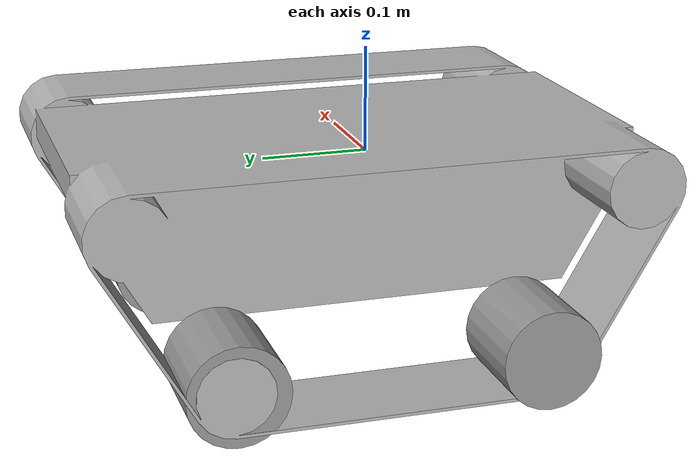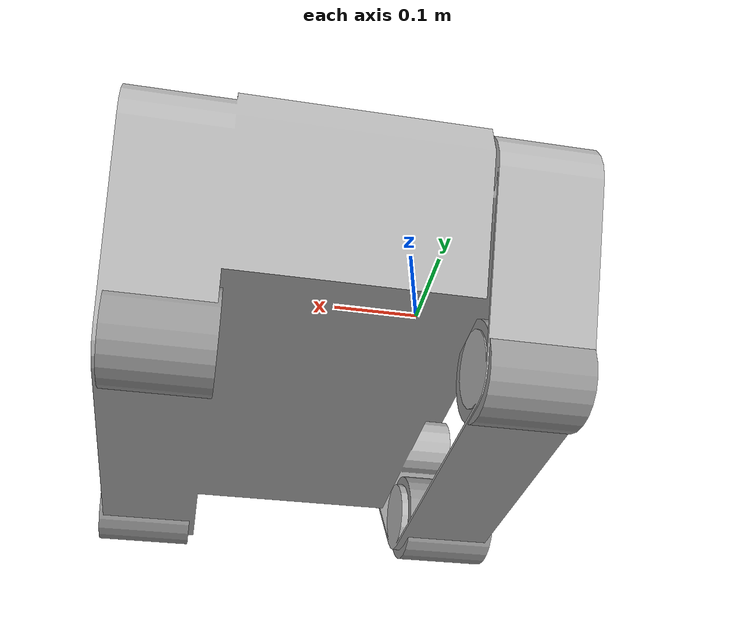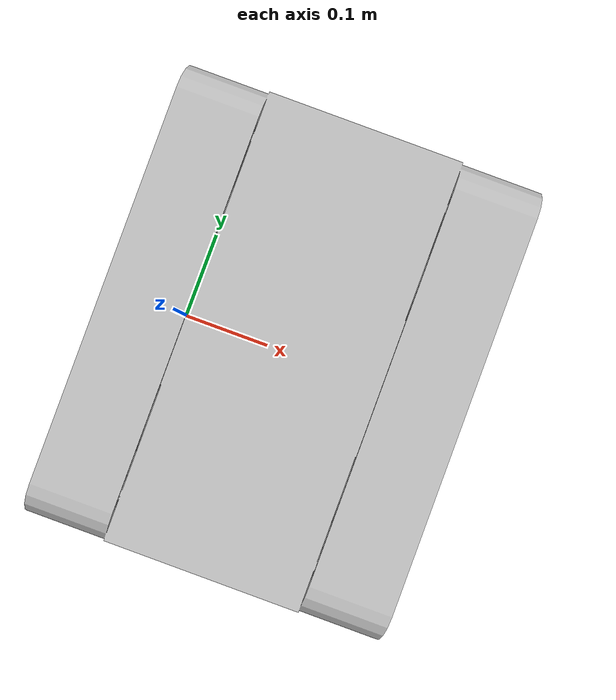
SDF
<?xml version='1.0'?>
<sdf version='1.6'>
  <model name='capra6'>
    <link name='base_link'>
      <pose frame=''>0 0 0 0 -0 0</pose>
      <inertial>
        <pose frame=''>0.12065 0 -0.079421 0 -0 0</pose>
        <mass>23.124</mass>
        <inertia>
          <ixx>0.660306</ixx>
          <ixy>-1.78746e-18</ixy>
          <ixz>0</ixz>
          <iyy>0.303669</iyy>
          <iyz>8.59691e-17</iyz>
          <izz>0.815602</izz>
        </inertia>
      </inertial>
      <self_collide>0</self_collide>
      <kinematic>0</kinematic>
      <velocity_decay/>
      <sensor name='sensor' type='ray'>
        <visualize>1</visualize>
        <update_rate>30</update_rate>
        <ray>
          <scan>
            <horizontal>
              <samples>540</samples>
              <resolution>1</resolution>
              <min_angle>-2.3562</min_angle>
              <max_angle>2.3562</max_angle>
            </horizontal>
            <vertical>
              <samples>1</samples>
              <min_angle>0</min_angle>
              <max_angle>0</max_angle>
            </vertical>
          </scan>
          <range>
            <min>0.2</min>
            <max>4</max>
            <resolution>0.1</resolution>
          </range>
          <noise>
            <type>gaussian</type>
            <mean>0</mean>
            <stddev>0.01</stddev>
          </noise>
        </ray>
        <plugin name='laser' filename='libgazebo_ros_laser.so'>
          <topicName>/scan</topicName>
          <frameName>laser</frameName>
          <robotNamespace>/</robotNamespace>
        </plugin>
        <always_on>1</always_on>
        <update_rate>5</update_rate>
        <visualize>1</visualize>
        <pose frame=''>0.1 0.25 0.05 0 -0 1.5708</pose>
      </sensor>
      <visual name='base_link_visual'>
        <pose frame=''>0 0 0 1.5708 -0 0</pose>
        <geometry>
          <mesh>
            <scale>1 1 1</scale>
            <uri>model://robotcapra/meshes/robotcapra.stl</uri>
          </mesh>
        </geometry>
        <material>
          <script>
            <uri>__default__</uri>
            <name>__default__</name>
          </script>
          <shader type='pixel'/>
          <emissive>0 0 0 1</emissive>
        </material>
        <cast_shadows>1</cast_shadows>
        <transparency>0</transparency>
      </visual>
      <collision name='base_link_collision'>
        <laser_retro>0</laser_retro>
        <max_contacts>10</max_contacts>
        <pose frame=''>0 0 0 1.5708 -0 0</pose>
        <geometry>
          <mesh>
            <uri>model://robotcapra/meshes/robotcapra.stl</uri>
            <scale>1 1 1</scale>
          </mesh>
        </geometry>
        <surface>
          <friction>
            <ode>
              <mu>1</mu>
              <mu2>1</mu2>
              <fdir1>0 0 0</fdir1>
              <slip1>0</slip1>
              <slip2>0</slip2>
            </ode>
            <torsional>
              <coefficient>1</coefficient>
              <patch_radius>0</patch_radius>
              <surface_radius>0</surface_radius>
              <use_patch_radius>1</use_patch_radius>
              <ode>
                <slip>0</slip>
              </ode>
            </torsional>
          </friction>
          <bounce>
            <restitution_coefficient>0</restitution_coefficient>
            <threshold>1e+06</threshold>
          </bounce>
          <contact>
            <collide_without_contact>0</collide_without_contact>
            <collide_without_contact_bitmask>1</collide_without_contact_bitmask>
            <collide_bitmask>1</collide_bitmask>
            <ode>
              <soft_cfm>0</soft_cfm>
              <soft_erp>0.2</soft_erp>
              <kp>1e+13</kp>
              <kd>1</kd>
              <max_vel>0.01</max_vel>
              <min_depth>0</min_depth>
            </ode>
            <bullet>
              <split_impulse>1</split_impulse>
              <split_impulse_penetration_threshold>-0.01</split_impulse_penetration_threshold>
              <soft_cfm>0</soft_cfm>
              <soft_erp>0.2</soft_erp>
              <kp>1e+13</kp>
              <kd>1</kd>
            </bullet>
          </contact>
        </surface>
      </collision>
      <collision name='base_link_fixed_joint_lump__laser_collision_1'>
        <laser_retro>0</laser_retro>
        <max_contacts>10</max_contacts>
        <pose frame=''>0.1 0.25 0.05 0 -0 1.5708</pose>
        <geometry>
          <sphere>
            <radius>0.1</radius>
          </sphere>
        </geometry>
        <surface>
          <friction>
            <ode>
              <mu>1</mu>
              <mu2>1</mu2>
              <fdir1>0 0 0</fdir1>
              <slip1>0</slip1>
              <slip2>0</slip2>
            </ode>
            <torsional>
              <coefficient>1</coefficient>
              <patch_radius>0</patch_radius>
              <surface_radius>0</surface_radius>
              <use_patch_radius>1</use_patch_radius>
              <ode>
                <slip>0</slip>
              </ode>
            </torsional>
          </friction>
          <bounce>
            <restitution_coefficient>0</restitution_coefficient>
            <threshold>1e+06</threshold>
          </bounce>
          <contact>
            <collide_without_contact>0</collide_without_contact>
            <collide_without_contact_bitmask>1</collide_without_contact_bitmask>
            <collide_bitmask>1</collide_bitmask>
            <ode>
              <soft_cfm>0</soft_cfm>
              <soft_erp>0.2</soft_erp>
              <kp>1e+13</kp>
              <kd>1</kd>
              <max_vel>0.01</max_vel>
              <min_depth>0</min_depth>
            </ode>
            <bullet>
              <split_impulse>1</split_impulse>
              <split_impulse_penetration_threshold>-0.01</split_impulse_penetration_threshold>
              <soft_cfm>0</soft_cfm>
              <soft_erp>0.2</soft_erp>
              <kp>1e+13</kp>
              <kd>1</kd>
            </bullet>
          </contact>
        </surface>
      </collision>
    </link>
    <link name='link_0'>
      <pose frame=''>0.288168 0.153769 -0.191776 0 -0 0</pose>
      <inertial>
        <mass>1</mass>
        <inertia>
          <ixx>0.145833</ixx>
          <ixy>0</ixy>
          <ixz>0</ixz>
          <iyy>0.145833</iyy>
          <iyz>0</iyz>
          <izz>0.125</izz>
        </inertia>
        <pose frame=''>0 0 0 0 -0 0</pose>
      </inertial>
      <gravity>1</gravity>
      <self_collide>0</self_collide>
      <kinematic>0</kinematic>
      <visual name='visual'>
        <pose frame=''>0 0 0 3.14159 1.57079 3.14159</pose>
        <geometry>
          <cylinder>
            <radius>0.05</radius>
            <length>0.1</length>
          </cylinder>
        </geometry>
        <material>
          <lighting>1</lighting>
          <script>
            <uri>file://media/materials/scripts/gazebo.material</uri>
            <name>Gazebo/Grey</name>
          </script>
          <shader type='pixel'>
            <normal_map>__default__</normal_map>
          </shader>
          <ambient>0.3 0.3 0.3 1</ambient>
          <diffuse>0.7 0.7 0.7 1</diffuse>
          <specular>0.01 0.01 0.01 1</specular>
          <emissive>0 0 0 1</emissive>
        </material>
        <transparency>0</transparency>
        <cast_shadows>1</cast_shadows>
      </visual>
      <collision name='collision'>
        <laser_retro>0</laser_retro>
        <max_contacts>10</max_contacts>
        <pose frame=''>0 0 0 3.14159 1.57079 3.14159</pose>
        <geometry>
          <cylinder>
            <radius>0.05</radius>
            <length>0.1</length>
          </cylinder>
        </geometry>
        <surface>
          <friction>
            <ode>
              <mu>1</mu>
              <mu2>1</mu2>
              <fdir1>0 0 0</fdir1>
              <slip1>0</slip1>
              <slip2>0</slip2>
            </ode>
            <torsional>
              <coefficient>1</coefficient>
              <patch_radius>0</patch_radius>
              <surface_radius>0</surface_radius>
              <use_patch_radius>1</use_patch_radius>
              <ode>
                <slip>0</slip>
              </ode>
            </torsional>
          </friction>
          <bounce>
            <restitution_coefficient>0</restitution_coefficient>
            <threshold>1e+06</threshold>
          </bounce>
          <contact>
            <collide_without_contact>0</collide_without_contact>
            <collide_without_contact_bitmask>1</collide_without_contact_bitmask>
            <collide_bitmask>1</collide_bitmask>
            <ode>
              <soft_cfm>0</soft_cfm>
              <soft_erp>0.2</soft_erp>
              <kp>1e+13</kp>
              <kd>1</kd>
              <max_vel>0.01</max_vel>
              <min_depth>0</min_depth>
            </ode>
            <bullet>
              <split_impulse>1</split_impulse>
              <split_impulse_penetration_threshold>-0.01</split_impulse_penetration_threshold>
              <soft_cfm>0</soft_cfm>
              <soft_erp>0.2</soft_erp>
              <kp>1e+13</kp>
              <kd>1</kd>
            </bullet>
          </contact>
        </surface>
      </collision>
    </link>
    <link name='link_0_clone'>
      <pose frame=''>-0.051275 0.15058 -0.191776 0 -0 0</pose>
      <inertial>
        <mass>1</mass>
        <inertia>
          <ixx>0.145833</ixx>
          <ixy>0</ixy>
          <ixz>0</ixz>
          <iyy>0.145833</iyy>
          <iyz>0</iyz>
          <izz>0.125</izz>
        </inertia>
        <pose frame=''>0 0 0 0 -0 0</pose>
      </inertial>
      <self_collide>0</self_collide>
      <kinematic>0</kinematic>
      <visual name='visual'>
        <pose frame=''>0 0 0 3.14159 1.57079 3.14159</pose>
        <geometry>
          <cylinder>
            <radius>0.05</radius>
            <length>0.1</length>
          </cylinder>
        </geometry>
        <material>
          <lighting>1</lighting>
          <script>
            <uri>file://media/materials/scripts/gazebo.material</uri>
            <name>Gazebo/Grey</name>
          </script>
          <shader type='pixel'>
            <normal_map>__default__</normal_map>
          </shader>
          <ambient>0.3 0.3 0.3 1</ambient>
          <diffuse>0.7 0.7 0.7 1</diffuse>
          <specular>0.01 0.01 0.01 1</specular>
          <emissive>0 0 0 1</emissive>
        </material>
        <transparency>0</transparency>
        <cast_shadows>1</cast_shadows>
      </visual>
      <collision name='collision'>
        <laser_retro>0</laser_retro>
        <max_contacts>10</max_contacts>
        <pose frame=''>0 0 0 3.14159 1.57079 3.14159</pose>
        <geometry>
          <cylinder>
            <radius>0.05</radius>
            <length>0.1</length>
          </cylinder>
        </geometry>
        <surface>
          <friction>
            <ode>
              <mu>1</mu>
              <mu2>1</mu2>
              <fdir1>0 0 0</fdir1>
              <slip1>0</slip1>
              <slip2>0</slip2>
            </ode>
            <torsional>
              <coefficient>1</coefficient>
              <patch_radius>0</patch_radius>
              <surface_radius>0</surface_radius>
              <use_patch_radius>1</use_patch_radius>
              <ode>
                <slip>0</slip>
              </ode>
            </torsional>
          </friction>
          <bounce>
            <restitution_coefficient>0</restitution_coefficient>
            <threshold>1e+06</threshold>
          </bounce>
          <contact>
            <collide_without_contact>0</collide_without_contact>
            <collide_without_contact_bitmask>1</collide_without_contact_bitmask>
            <collide_bitmask>1</collide_bitmask>
            <ode>
              <soft_cfm>0</soft_cfm>
              <soft_erp>0.2</soft_erp>
              <kp>1e+13</kp>
              <kd>1</kd>
              <max_vel>0.01</max_vel>
              <min_depth>0</min_depth>
            </ode>
            <bullet>
              <split_impulse>1</split_impulse>
              <split_impulse_penetration_threshold>-0.01</split_impulse_penetration_threshold>
              <soft_cfm>0</soft_cfm>
              <soft_erp>0.2</soft_erp>
              <kp>1e+13</kp>
              <kd>1</kd>
            </bullet>
          </contact>
        </surface>
      </collision>
    </link>
    <link name='link_0_clone_0'>
      <pose frame=''>0.297196 -0.155354 -0.191777 0 -0 0</pose>
      <inertial>
        <mass>1</mass>
        <inertia>
          <ixx>0.145833</ixx>
          <ixy>0</ixy>
          <ixz>0</ixz>
          <iyy>0.145833</iyy>
          <iyz>0</iyz>
          <izz>0.125</izz>
        </inertia>
        <pose frame=''>0 0 0 0 -0 0</pose>
      </inertial>
      <self_collide>0</self_collide>
      <kinematic>0</kinematic>
      <visual name='visual'>
        <pose frame=''>0 0 0 3.14159 1.57079 3.14159</pose>
        <geometry>
          <cylinder>
            <radius>0.05</radius>
            <length>0.1</length>
          </cylinder>
        </geometry>
        <material>
          <lighting>1</lighting>
          <script>
            <uri>file://media/materials/scripts/gazebo.material</uri>
            <name>Gazebo/Grey</name>
          </script>
          <shader type='pixel'>
            <normal_map>__default__</normal_map>
          </shader>
          <ambient>0.3 0.3 0.3 1</ambient>
          <diffuse>0.7 0.7 0.7 1</diffuse>
          <specular>0.01 0.01 0.01 1</specular>
          <emissive>0 0 0 1</emissive>
        </material>
        <transparency>0</transparency>
        <cast_shadows>1</cast_shadows>
      </visual>
      <collision name='collision'>
        <laser_retro>0</laser_retro>
        <max_contacts>10</max_contacts>
        <pose frame=''>0 0 0 3.14159 1.57079 3.14159</pose>
        <geometry>
          <cylinder>
            <radius>0.05</radius>
            <length>0.1</length>
          </cylinder>
        </geometry>
        <surface>
          <friction>
            <ode>
              <mu>1</mu>
              <mu2>1</mu2>
              <fdir1>0 0 0</fdir1>
              <slip1>0</slip1>
              <slip2>0</slip2>
            </ode>
            <torsional>
              <coefficient>1</coefficient>
              <patch_radius>0</patch_radius>
              <surface_radius>0</surface_radius>
              <use_patch_radius>1</use_patch_radius>
              <ode>
                <slip>0</slip>
              </ode>
            </torsional>
          </friction>
          <bounce>
            <restitution_coefficient>0</restitution_coefficient>
            <threshold>1e+06</threshold>
          </bounce>
          <contact>
            <collide_without_contact>0</collide_without_contact>
            <collide_without_contact_bitmask>1</collide_without_contact_bitmask>
            <collide_bitmask>1</collide_bitmask>
            <ode>
              <soft_cfm>0</soft_cfm>
              <soft_erp>0.2</soft_erp>
              <kp>1e+13</kp>
              <kd>1</kd>
              <max_vel>0.01</max_vel>
              <min_depth>0</min_depth>
            </ode>
            <bullet>
              <split_impulse>1</split_impulse>
              <split_impulse_penetration_threshold>-0.01</split_impulse_penetration_threshold>
              <soft_cfm>0</soft_cfm>
              <soft_erp>0.2</soft_erp>
              <kp>1e+13</kp>
              <kd>1</kd>
            </bullet>
          </contact>
        </surface>
      </collision>
    </link>
    <link name='link_0_clone_1'>
      <pose frame=''>-0.058032 -0.154622 -0.191778 0 -0 0</pose>
      <inertial>
        <mass>1</mass>
        <inertia>
          <ixx>0.145833</ixx>
          <ixy>0</ixy>
          <ixz>0</ixz>
          <iyy>0.145833</iyy>
          <iyz>0</iyz>
          <izz>0.125</izz>
        </inertia>
        <pose frame=''>0 0 0 0 -0 0</pose>
      </inertial>
      <self_collide>0</self_collide>
      <kinematic>0</kinematic>
      <visual name='visual'>
        <pose frame=''>0 0 0 3.14159 1.57079 3.14159</pose>
        <geometry>
          <cylinder>
            <radius>0.05</radius>
            <length>0.1</length>
          </cylinder>
        </geometry>
        <material>
          <lighting>1</lighting>
          <script>
            <uri>file://media/materials/scripts/gazebo.material</uri>
            <name>Gazebo/Grey</name>
          </script>
          <shader type='pixel'>
            <normal_map>__default__</normal_map>
          </shader>
          <ambient>0.3 0.3 0.3 1</ambient>
          <diffuse>0.7 0.7 0.7 1</diffuse>
          <specular>0.01 0.01 0.01 1</specular>
          <emissive>0 0 0 1</emissive>
        </material>
        <transparency>0</transparency>
        <cast_shadows>1</cast_shadows>
      </visual>
      <collision name='collision'>
        <laser_retro>0</laser_retro>
        <max_contacts>10</max_contacts>
        <pose frame=''>0 0 0 3.14159 1.57079 3.14159</pose>
        <geometry>
          <cylinder>
            <radius>0.05</radius>
            <length>0.1</length>
          </cylinder>
        </geometry>
        <surface>
          <friction>
            <ode>
              <mu>1</mu>
              <mu2>1</mu2>
              <fdir1>0 0 0</fdir1>
              <slip1>0</slip1>
              <slip2>0</slip2>
            </ode>
            <torsional>
              <coefficient>1</coefficient>
              <patch_radius>0</patch_radius>
              <surface_radius>0</surface_radius>
              <use_patch_radius>1</use_patch_radius>
              <ode>
                <slip>0</slip>
              </ode>
            </torsional>
          </friction>
          <bounce>
            <restitution_coefficient>0</restitution_coefficient>
            <threshold>1e+06</threshold>
          </bounce>
          <contact>
            <collide_without_contact>0</collide_without_contact>
            <collide_without_contact_bitmask>1</collide_without_contact_bitmask>
            <collide_bitmask>1</collide_bitmask>
            <ode>
              <soft_cfm>0</soft_cfm>
              <soft_erp>0.2</soft_erp>
              <kp>1e+13</kp>
              <kd>1</kd>
              <max_vel>0.01</max_vel>
              <min_depth>0</min_depth>
            </ode>
            <bullet>
              <split_impulse>1</split_impulse>
              <split_impulse_penetration_threshold>-0.01</split_impulse_penetration_threshold>
              <soft_cfm>0</soft_cfm>
              <soft_erp>0.2</soft_erp>
              <kp>1e+13</kp>
              <kd>1</kd>
            </bullet>
          </contact>
        </surface>
      </collision>
    </link>
    <joint name='JOINT_WHEEL_F_R' type='revolute'>
      <parent>base_link</parent>
      <child>link_0</child>
      <pose frame=''>0 0 0 0 -0 0</pose>
      <axis>
        <xyz>-1 0 0</xyz>
        <use_parent_model_frame>0</use_parent_model_frame>
        <limit>
          <lower>-1.79769e+308</lower>
          <upper>1.79769e+308</upper>
          <effort>-1</effort>
          <velocity>-1</velocity>
        </limit>
        <dynamics>
          <spring_reference>0</spring_reference>
          <spring_stiffness>0</spring_stiffness>
          <damping>0</damping>
          <friction>0</friction>
        </dynamics>
      </axis>
      <physics>
        <ode>
          <limit>
            <cfm>0</cfm>
            <erp>0.2</erp>
          </limit>
          <suspension>
            <cfm>0</cfm>
            <erp>0.2</erp>
          </suspension>
        </ode>
      </physics>
    </joint>
    <joint name='JOINT_WHEEL_R_R' type='revolute'>
      <parent>base_link</parent>
      <child>link_0_clone_0</child>
      <pose frame=''>0 0 0 0 -0 0</pose>
      <axis>
        <xyz>-1 0 0</xyz>
        <use_parent_model_frame>0</use_parent_model_frame>
        <limit>
          <lower>-1.79769e+308</lower>
          <upper>1.79769e+308</upper>
          <effort>-1</effort>
          <velocity>-1</velocity>
        </limit>
        <dynamics>
          <spring_reference>0</spring_reference>
          <spring_stiffness>0</spring_stiffness>
          <damping>0</damping>
          <friction>0</friction>
        </dynamics>
      </axis>
      <physics>
        <ode>
          <limit>
            <cfm>0</cfm>
            <erp>0.2</erp>
          </limit>
          <suspension>
            <cfm>0</cfm>
            <erp>0.2</erp>
          </suspension>
        </ode>
      </physics>
    </joint>
    <joint name='JOINT_WHEEL_R_L' type='revolute'>
      <parent>base_link</parent>
      <child>link_0_clone_1</child>
      <pose frame=''>0 0 0 0 -0 0</pose>
      <axis>
        <xyz>1 0 0</xyz>
        <use_parent_model_frame>0</use_parent_model_frame>
        <limit>
          <lower>-1.79769e+308</lower>
          <upper>1.79769e+308</upper>
          <effort>-1</effort>
          <velocity>-1</velocity>
        </limit>
        <dynamics>
          <spring_reference>0</spring_reference>
          <spring_stiffness>0</spring_stiffness>
          <damping>0</damping>
          <friction>0</friction>
        </dynamics>
      </axis>
      <physics>
        <ode>
          <limit>
            <cfm>0</cfm>
            <erp>0.2</erp>
          </limit>
          <suspension>
            <cfm>0</cfm>
            <erp>0.2</erp>
          </suspension>
        </ode>
      </physics>
    </joint>
    <joint name='JOINT_WHEEL_F_L' type='revolute'>
      <parent>base_link</parent>
      <child>link_0_clone</child>
      <pose frame=''>0 0 0 0 -0 0</pose>
      <axis>
        <xyz>1 0 0</xyz>
        <use_parent_model_frame>0</use_parent_model_frame>
        <limit>
          <lower>-1.79769e+308</lower>
          <upper>1.79769e+308</upper>
          <effort>-1</effort>
          <velocity>-1</velocity>
        </limit>
        <dynamics>
          <spring_reference>0</spring_reference>
          <spring_stiffness>0</spring_stiffness>
          <damping>0</damping>
          <friction>0</friction>
        </dynamics>
      </axis>
      <physics>
        <ode>
          <limit>
            <cfm>0</cfm>
            <erp>0.2</erp>
          </limit>
          <suspension>
            <cfm>0</cfm>
            <erp>0.2</erp>
          </suspension>
        </ode>
      </physics>
    </joint>
    <static>0</static>
    <allow_auto_disable>1</allow_auto_disable>
    <plugin name='object_controller' filename='libgazebo_ros_planar_move.so'>
      <commandTopic>/cmd_vel</commandTopic>
      <odometryTopic>/odom</odometryTopic>
      <odometryFrame>odom</odometryFrame>
      <odometryRate>20.0</odometryRate>
      <robotBaseFrame>base_link</robotBaseFrame>
      <robotNamespace>/</robotNamespace>
    </plugin>
  </model>
</sdf>
